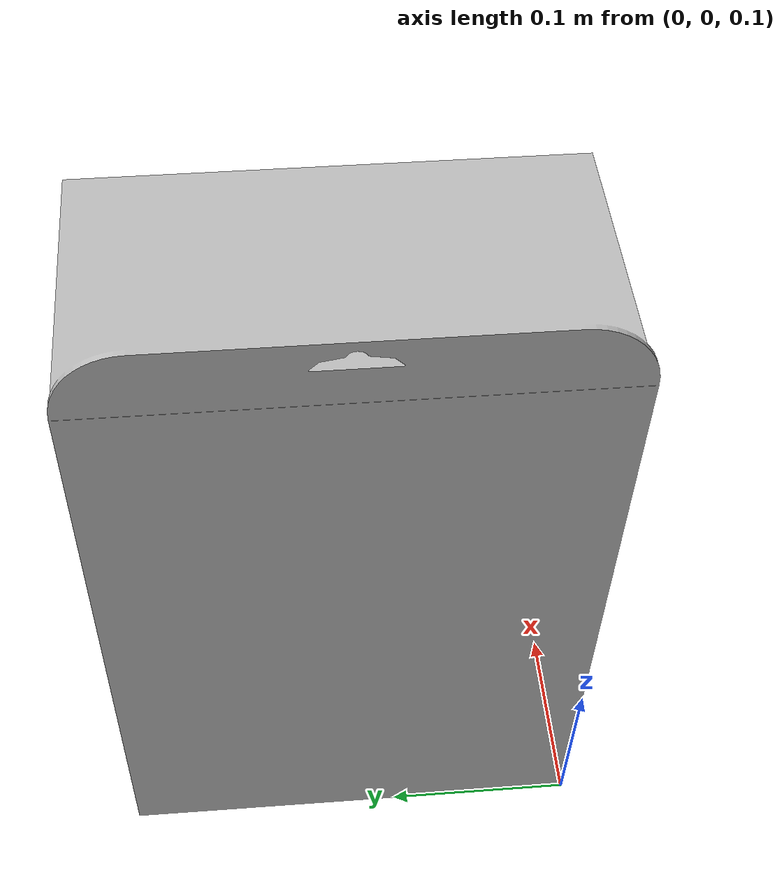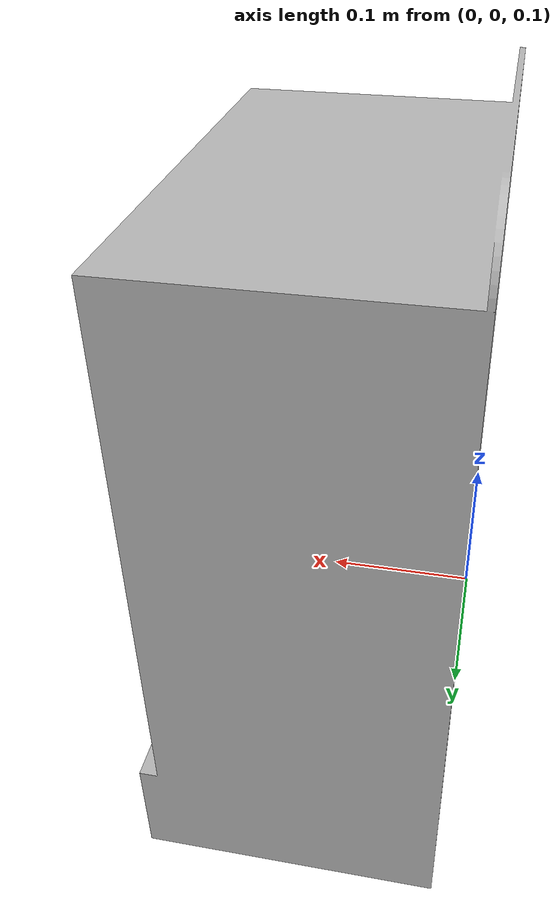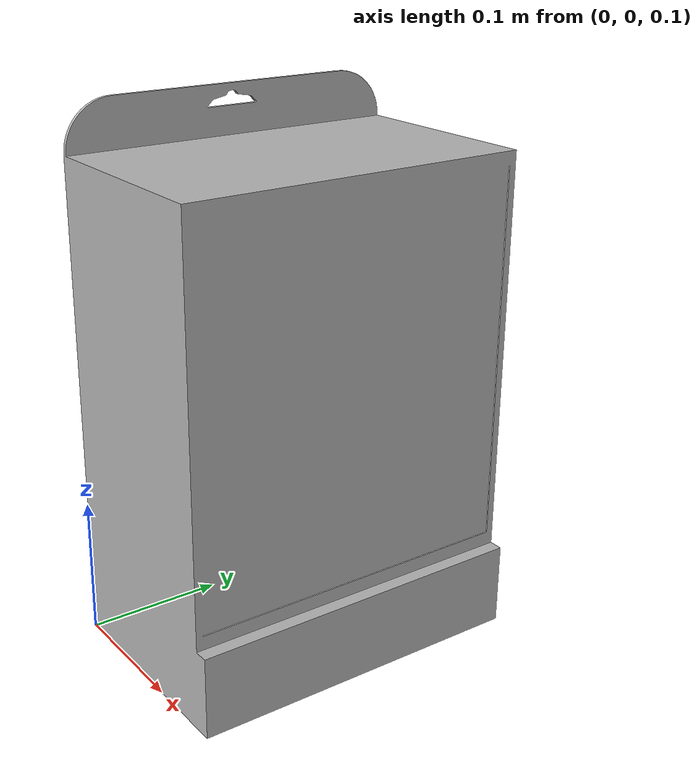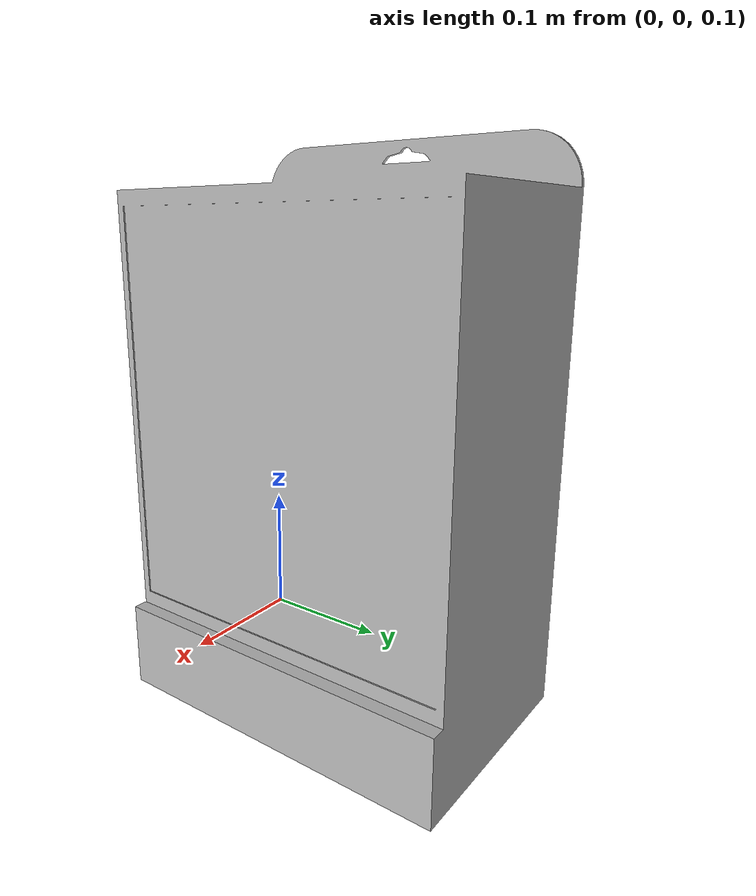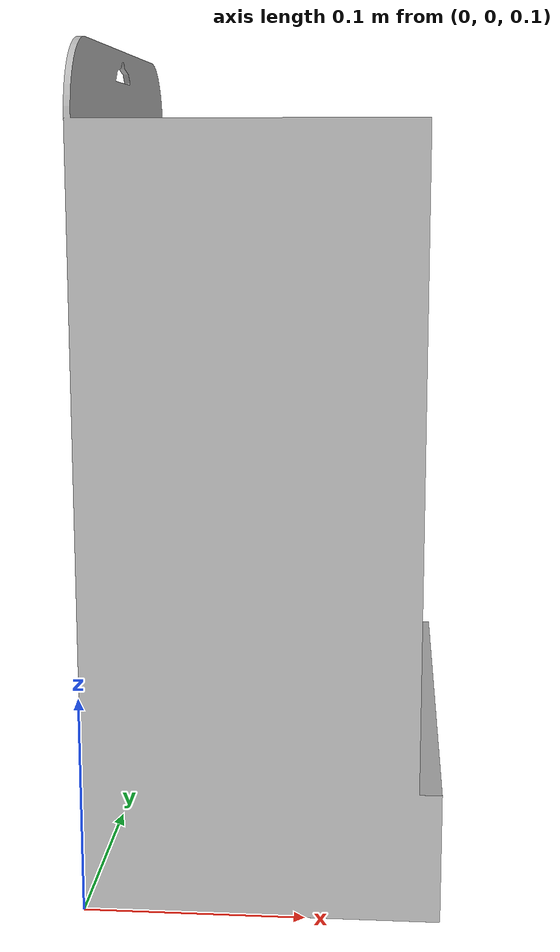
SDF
<?xml version='1.0'?>
<sdf version='1.4'>
  <model name="figure1">
  <static>true</static>
    <link name='base_body'>
      <pose>0 0 .1 0 0 0</pose>
       <collision name='collision'>
        <geometry>
          <mesh>
            <uri>model://figure1/meshes/figure1.stl</uri>
            <scale>0.001 0.001 0.001</scale>
          </mesh>
        </geometry>
      </collision>
      <visual name='visual'>
        <geometry>
          <mesh>
            <uri>model://figure1/meshes/figure1.stl</uri>
            <scale>0.001 0.001 0.001</scale>
          </mesh>
        </geometry>
	<material>
          <script>
            <uri>model://figure1/mat/mat.material</uri>
            <name>figure1_mat</name>
          </script>
        </material>
      </visual>
    </link>
  </model>
</sdf>
